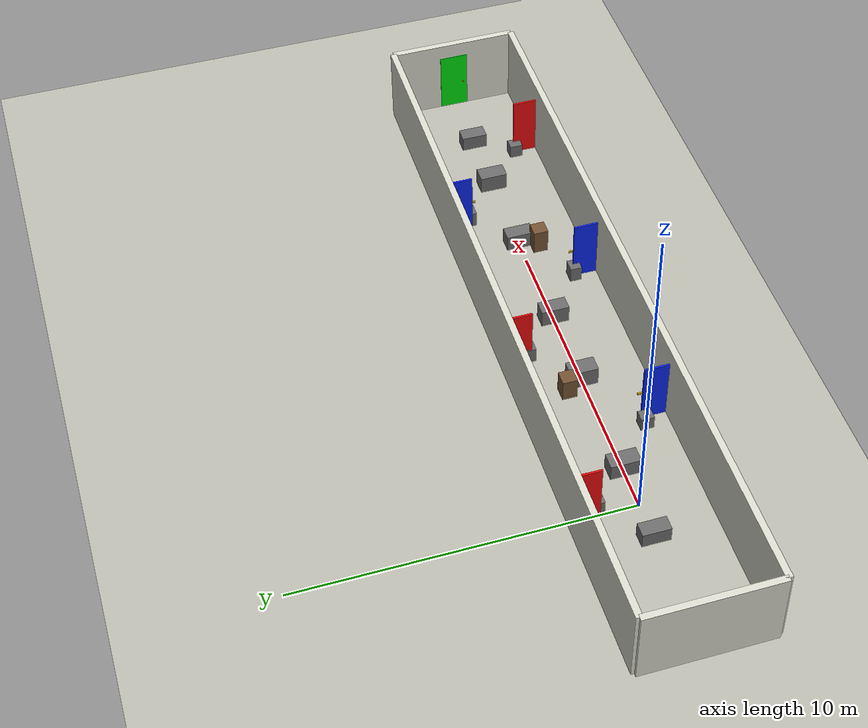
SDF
<?xml version="1.0" ?>
<sdf version="1.6">
  <world name="fire_corridor">

    <physics name="default_physics" type="ode">
      <max_step_size>0.001</max_step_size>
      <real_time_update_rate>1000</real_time_update_rate>
    </physics>

    <plugin name="gz::sim::systems::Physics" filename="gz-sim-physics-system"/>
    <plugin name="gz::sim::systems::UserCommands" filename="gz-sim-user-commands-system"/>
    <plugin name="gz::sim::systems::SceneBroadcaster" filename="gz-sim-scene-broadcaster-system"/>
    <plugin name="gz::sim::systems::Sensors" filename="gz-sim-sensors-system">
      <render_engine>ogre</render_engine>
    </plugin>

    <light type="directional" name="sun">
      <cast_shadows>true</cast_shadows>
      <pose>6 0 10 0 0 0</pose>
      <diffuse>0.9 0.9 0.9 1</diffuse>
      <specular>0.3 0.3 0.3 1</specular>
      <direction>-0.5 0.1 -1</direction>
    </light>
    <light type="point" name="light_mid">
      <pose>8 0 2.8 0 0 0</pose>
      <diffuse>0.8 0.8 0.8 1</diffuse>
      <specular>0.1 0.1 0.1 1</specular>
      <attenuation><range>16</range><linear>0.05</linear></attenuation>
    </light>

    <model name="ground_plane">
      <static>true</static>
      <link name="link">
        <collision name="col">
          <geometry><plane><normal>0 0 1</normal><size>30 10</size></plane></geometry>
        </collision>
        <visual name="vis">
          <geometry><plane><normal>0 0 1</normal><size>30 10</size></plane></geometry>
          <material><ambient>0.72 0.72 0.68 1</ambient><diffuse>0.72 0.72 0.68 1</diffuse></material>
        </visual>
      </link>
    </model>

    <model name="wall_south">
      <static>true</static>
      <pose>6.5 -2 1.25 0 0 0</pose>
      <link name="link">
        <collision name="col"><geometry><box><size>23 0.2 2.5</size></box></geometry></collision>
        <visual name="vis">
          <geometry><box><size>23 0.2 2.5</size></box></geometry>
          <material><ambient>0.85 0.85 0.80 1</ambient><diffuse>0.85 0.85 0.80 1</diffuse></material>
        </visual>
      </link>
    </model>

    <model name="wall_north">
      <static>true</static>
      <pose>6.5 2 1.25 0 0 0</pose>
      <link name="link">
        <collision name="col"><geometry><box><size>23 0.2 2.5</size></box></geometry></collision>
        <visual name="vis">
          <geometry><box><size>23 0.2 2.5</size></box></geometry>
          <material><ambient>0.85 0.85 0.80 1</ambient><diffuse>0.85 0.85 0.80 1</diffuse></material>
        </visual>
      </link>
    </model>

    <model name="wall_west">
      <static>true</static>
      <pose>-5 0 1.25 0 0 0</pose>
      <link name="link">
        <collision name="col"><geometry><box><size>0.2 4 2.5</size></box></geometry></collision>
        <visual name="vis">
          <geometry><box><size>0.2 4 2.5</size></box></geometry>
          <material><ambient>0.85 0.85 0.80 1</ambient><diffuse>0.85 0.85 0.80 1</diffuse></material>
        </visual>
      </link>
    </model>

    <model name="wall_east">
      <static>true</static>
      <pose>18 0 1.25 0 0 0</pose>
      <link name="link">
        <collision name="col"><geometry><box><size>0.2 4 2.5</size></box></geometry></collision>
        <visual name="vis">
          <geometry><box><size>0.2 4 2.5</size></box></geometry>
          <material><ambient>0.85 0.85 0.80 1</ambient><diffuse>0.85 0.85 0.80 1</diffuse></material>
        </visual>
      </link>
    </model>

    <!-- Side doors: visual only, no collision. -->
    <model name="door_red1">
      <static>true</static>
      <pose>0 1.55 1.0 0 0 0</pose>
      <link name="link">
        <visual name="panel">
          <geometry><box><size>0.06 0.8 2.0</size></box></geometry>
          <material><ambient>0.92 0.04 0.04 1</ambient><diffuse>0.92 0.04 0.04 1</diffuse></material>
        </visual>
      </link>
    </model>
    <model name="handle_red1">
      <static>true</static>
      <pose>0.04 1.25 0.95 0 1.5708 0</pose>
      <link name="link">
        <visual name="handle"><geometry><cylinder><radius>0.018</radius><length>0.13</length></cylinder></geometry><material><ambient>0.75 0.60 0.05 1</ambient></material></visual>
      </link>
    </model>

    <model name="door_blue1">
      <static>false</static>
      <pose>3 -1.55 1 0 0 0</pose>
      <link name="panel">
        <inertial>
          <mass>2.0</mass>
          <inertia>
            <ixx>0.90</ixx><ixy>0</ixy><ixz>0</ixz>
            <iyy>0.90</iyy><iyz>0</iyz><izz>0.12</izz>
          </inertia>
        </inertial>
        <collision name="panel_collision">
          <geometry><box><size>0.06 0.8 2</size></box></geometry>
          <surface>
            <friction><ode><mu>0.8</mu><mu2>0.8</mu2></ode></friction>
          </surface>
        </collision>
        <visual name="panel">
          <geometry><box><size>0.06 0.8 2</size></box></geometry>
          <material><ambient>0.04 0.14 0.92 1</ambient><diffuse>0.04 0.14 0.92 1</diffuse></material>
        </visual>
        <collision name="handle_collision">
<pose>0.074 0.36 -0.05 0 0 0</pose>
<geometry><box><size>0.07 0.32 0.055</size></box></geometry>
        </collision>
        <visual name="handle_backplate">
<pose>0.032 0.24 -0.05 0 0 0</pose>
<geometry><box><size>0.022 0.08 0.28</size></box></geometry>
<material><ambient>0.75 0.60 0.05 1</ambient><diffuse>0.75 0.60 0.05 1</diffuse></material>
        </visual>
        <visual name="handle">
<pose>0.078 0.36 -0.05 0 0 0</pose>
<geometry><box><size>0.052 0.32 0.052</size></box></geometry>
<material><ambient>0.75 0.60 0.05 1</ambient><diffuse>0.75 0.60 0.05 1</diffuse></material>
        </visual>
      </link>
      <joint name="hinge" type="revolute">
        <pose>0 -0.4 0 0 0 0</pose>
        <parent>world</parent>
        <child>panel</child>
        <axis>
          <xyz>0 0 1</xyz>
          <limit><lower>-2.10</lower><upper>2.10</upper><effort>40</effort><velocity>1.5</velocity></limit>
          <dynamics><damping>1.0</damping><friction>0.05</friction></dynamics>
        </axis>
      </joint>
      <plugin filename="ignition-gazebo-joint-position-controller-system"
              name="gz::sim::systems::JointPositionController">
        <joint_name>hinge</joint_name>
        <topic>/fire_robot/door/blue/x300/yn155/sn/cmd</topic>
        <p_gain>8.0</p_gain>
        <d_gain>0.4</d_gain>
        <cmd_max>60</cmd_max>
        <cmd_min>-60</cmd_min>
      </plugin>
    </model>

    <model name="door_red2">
      <static>true</static>
      <pose>6 1.55 1.0 0 0 0</pose>
      <link name="link">
        <visual name="panel">
          <geometry><box><size>0.06 0.8 2.0</size></box></geometry>
          <material><ambient>0.92 0.04 0.04 1</ambient><diffuse>0.92 0.04 0.04 1</diffuse></material>
        </visual>
      </link>
    </model>
    <model name="handle_red2">
      <static>true</static>
      <pose>6.04 1.25 0.95 0 1.5708 0</pose>
      <link name="link">
        <visual name="handle"><geometry><cylinder><radius>0.018</radius><length>0.13</length></cylinder></geometry><material><ambient>0.75 0.60 0.05 1</ambient></material></visual>
      </link>
    </model>

    <model name="door_blue2">
      <static>false</static>
      <pose>9 -1.55 1 0 0 0</pose>
      <link name="panel">
        <inertial>
          <mass>2.0</mass>
          <inertia>
            <ixx>0.90</ixx><ixy>0</ixy><ixz>0</ixz>
            <iyy>0.90</iyy><iyz>0</iyz><izz>0.12</izz>
          </inertia>
        </inertial>
        <collision name="panel_collision">
          <geometry><box><size>0.06 0.8 2</size></box></geometry>
          <surface>
            <friction><ode><mu>0.8</mu><mu2>0.8</mu2></ode></friction>
          </surface>
        </collision>
        <visual name="panel">
          <geometry><box><size>0.06 0.8 2</size></box></geometry>
          <material><ambient>0.04 0.14 0.92 1</ambient><diffuse>0.04 0.14 0.92 1</diffuse></material>
        </visual>
        <collision name="handle_collision">
<pose>0.074 0.36 -0.05 0 0 0</pose>
<geometry><box><size>0.07 0.32 0.055</size></box></geometry>
        </collision>
        <visual name="handle_backplate">
<pose>0.032 0.24 -0.05 0 0 0</pose>
<geometry><box><size>0.022 0.08 0.28</size></box></geometry>
<material><ambient>0.75 0.60 0.05 1</ambient><diffuse>0.75 0.60 0.05 1</diffuse></material>
        </visual>
        <visual name="handle">
<pose>0.078 0.36 -0.05 0 0 0</pose>
<geometry><box><size>0.052 0.32 0.052</size></box></geometry>
<material><ambient>0.75 0.60 0.05 1</ambient><diffuse>0.75 0.60 0.05 1</diffuse></material>
        </visual>
      </link>
      <joint name="hinge" type="revolute">
        <pose>0 -0.4 0 0 0 0</pose>
        <parent>world</parent>
        <child>panel</child>
        <axis>
          <xyz>0 0 1</xyz>
          <limit><lower>-2.10</lower><upper>2.10</upper><effort>40</effort><velocity>1.5</velocity></limit>
          <dynamics><damping>1.0</damping><friction>0.05</friction></dynamics>
        </axis>
      </joint>
      <plugin filename="ignition-gazebo-joint-position-controller-system"
              name="gz::sim::systems::JointPositionController">
        <joint_name>hinge</joint_name>
        <topic>/fire_robot/door/blue/x900/yn155/sn/cmd</topic>
        <p_gain>8.0</p_gain>
        <d_gain>0.4</d_gain>
        <cmd_max>60</cmd_max>
        <cmd_min>-60</cmd_min>
      </plugin>
    </model>

    <model name="door_blue3">
      <static>false</static>
      <pose>12 1.55 1 0 0 0</pose>
      <link name="panel">
        <inertial>
          <mass>2.0</mass>
          <inertia>
            <ixx>0.90</ixx><ixy>0</ixy><ixz>0</ixz>
            <iyy>0.90</iyy><iyz>0</iyz><izz>0.12</izz>
          </inertia>
        </inertial>
        <collision name="panel_collision">
          <geometry><box><size>0.06 0.8 2</size></box></geometry>
          <surface>
            <friction><ode><mu>0.8</mu><mu2>0.8</mu2></ode></friction>
          </surface>
        </collision>
        <visual name="panel">
          <geometry><box><size>0.06 0.8 2</size></box></geometry>
          <material><ambient>0.04 0.14 0.92 1</ambient><diffuse>0.04 0.14 0.92 1</diffuse></material>
        </visual>
        <collision name="handle_collision">
<pose>0.074 -0.36 -0.05 0 0 0</pose>
<geometry><box><size>0.07 0.32 0.055</size></box></geometry>
        </collision>
        <visual name="handle_backplate">
<pose>0.032 -0.24 -0.05 0 0 0</pose>
<geometry><box><size>0.022 0.08 0.28</size></box></geometry>
<material><ambient>0.75 0.60 0.05 1</ambient><diffuse>0.75 0.60 0.05 1</diffuse></material>
        </visual>
        <visual name="handle">
<pose>0.078 -0.36 -0.05 0 0 0</pose>
<geometry><box><size>0.052 0.32 0.052</size></box></geometry>
<material><ambient>0.75 0.60 0.05 1</ambient><diffuse>0.75 0.60 0.05 1</diffuse></material>
        </visual>
      </link>
      <joint name="hinge" type="revolute">
        <pose>0 0.4 0 0 0 0</pose>
        <parent>world</parent>
        <child>panel</child>
        <axis>
          <xyz>0 0 1</xyz>
          <limit><lower>-2.10</lower><upper>2.10</upper><effort>40</effort><velocity>1.5</velocity></limit>
          <dynamics><damping>1.0</damping><friction>0.05</friction></dynamics>
        </axis>
      </joint>
      <plugin filename="ignition-gazebo-joint-position-controller-system"
              name="gz::sim::systems::JointPositionController">
        <joint_name>hinge</joint_name>
        <topic>/fire_robot/door/blue/x1200/yp155/sp/cmd</topic>
        <p_gain>8.0</p_gain>
        <d_gain>0.4</d_gain>
        <cmd_max>60</cmd_max>
        <cmd_min>-60</cmd_min>
      </plugin>
    </model>

    <model name="door_red3">
      <static>true</static>
      <pose>15 -1.55 1.0 0 0 0</pose>
      <link name="link">
        <visual name="panel">
          <geometry><box><size>0.06 0.8 2.0</size></box></geometry>
          <material><ambient>0.92 0.04 0.04 1</ambient><diffuse>0.92 0.04 0.04 1</diffuse></material>
        </visual>
      </link>
    </model>
    <model name="handle_red3">
      <static>true</static>
      <pose>15.04 -1.25 0.95 0 1.5708 0</pose>
      <link name="link">
        <visual name="handle"><geometry><cylinder><radius>0.018</radius><length>0.13</length></cylinder></geometry><material><ambient>0.75 0.60 0.05 1</ambient></material></visual>
      </link>
    </model>

    <!-- Front emergency exit. -->
    <model name="door_exit">
      <static>true</static>
      <pose>17.92 0 1.0 0 0 0</pose>
      <link name="link">
        <visual name="panel">
          <geometry><box><size>0.06 0.9 2.0</size></box></geometry>
          <material><ambient>0.0 0.88 0.05 1</ambient><diffuse>0.0 0.88 0.05 1</diffuse></material>
        </visual>
      </link>
    </model>
    <model name="handle_exit">
      <static>true</static>
      <pose>17.88 -0.30 0.95 0 1.5708 0</pose>
      <link name="link">
        <visual name="handle"><geometry><cylinder><radius>0.018</radius><length>0.13</length></cylinder></geometry><material><ambient>0.75 0.60 0.05 1</ambient></material></visual>
      </link>
    </model>

    <model name="obstacle1">
      <static>true</static>
      <pose>4.5 0.55 0.35 0 0 0</pose>
      <link name="link">
        <collision name="col"><geometry><box><size>0.45 0.45 0.70</size></box></geometry></collision>
        <visual name="vis">
          <geometry><box><size>0.45 0.45 0.70</size></box></geometry>
          <material><ambient>0.45 0.32 0.20 1</ambient><diffuse>0.45 0.32 0.20 1</diffuse></material>
        </visual>
      </link>
    </model>

    <model name="obstacle2">
      <static>true</static>
      <pose>10.5 -0.55 0.40 0 0 0</pose>
      <link name="link">
        <collision name="col"><geometry><box><size>0.45 0.45 0.80</size></box></geometry></collision>
        <visual name="vis">
          <geometry><box><size>0.45 0.45 0.80</size></box></geometry>
          <material><ambient>0.45 0.32 0.20 1</ambient><diffuse>0.45 0.32 0.20 1</diffuse></material>
        </visual>
      </link>
    </model>

    <!-- Obstacle stress v4: neutral center-lane blockers force avoidance without color false positives. -->

    <model name="v4_center_block_00_start">
      <static>true</static>
      <pose>-1.10 0.00 0.24 0 0 0</pose>
      <link name="link">
        <collision name="col"><geometry><box><size>0.45 0.85 0.48</size></box></geometry></collision>
        <visual name="vis">
          <geometry><box><size>0.45 0.85 0.48</size></box></geometry>
          <material><ambient>0.42 0.42 0.42 1</ambient><diffuse>0.42 0.42 0.42 1</diffuse></material>
        </visual>
      </link>
    </model>

    <model name="v4_center_block_01_pre_blue1">
      <static>true</static>
      <pose>1.35 0.00 0.26 0 0 0</pose>
      <link name="link">
        <collision name="col"><geometry><box><size>0.50 0.90 0.52</size></box></geometry></collision>
        <visual name="vis">
          <geometry><box><size>0.50 0.90 0.52</size></box></geometry>
          <material><ambient>0.42 0.42 0.42 1</ambient><diffuse>0.42 0.42 0.42 1</diffuse></material>
        </visual>
      </link>
    </model>

    <model name="v4_center_block_02_between_blue1_blue2">
      <static>true</static>
      <pose>4.85 0.00 0.30 0 0 0</pose>
      <link name="link">
        <collision name="col"><geometry><box><size>0.50 0.85 0.60</size></box></geometry></collision>
        <visual name="vis">
          <geometry><box><size>0.50 0.85 0.60</size></box></geometry>
          <material><ambient>0.42 0.42 0.42 1</ambient><diffuse>0.42 0.42 0.42 1</diffuse></material>
        </visual>
      </link>
    </model>

    <model name="v4_center_block_03_pre_blue2">
      <static>true</static>
      <pose>7.45 0.00 0.28 0 0 0</pose>
      <link name="link">
        <collision name="col"><geometry><box><size>0.45 0.85 0.56</size></box></geometry></collision>
        <visual name="vis">
          <geometry><box><size>0.45 0.85 0.56</size></box></geometry>
          <material><ambient>0.42 0.42 0.42 1</ambient><diffuse>0.42 0.42 0.42 1</diffuse></material>
        </visual>
      </link>
    </model>

    <model name="v4_center_block_04_between_blue2_blue3">
      <static>true</static>
      <pose>10.85 0.00 0.26 0 0 0</pose>
      <link name="link">
        <collision name="col"><geometry><box><size>0.45 0.85 0.52</size></box></geometry></collision>
        <visual name="vis">
          <geometry><box><size>0.45 0.85 0.52</size></box></geometry>
          <material><ambient>0.42 0.42 0.42 1</ambient><diffuse>0.42 0.42 0.42 1</diffuse></material>
        </visual>
      </link>
    </model>

    <model name="v4_center_block_05_after_blue3">
      <static>true</static>
      <pose>13.65 0.00 0.28 0 0 0</pose>
      <link name="link">
        <collision name="col"><geometry><box><size>0.50 0.85 0.56</size></box></geometry></collision>
        <visual name="vis">
          <geometry><box><size>0.50 0.85 0.56</size></box></geometry>
          <material><ambient>0.42 0.42 0.42 1</ambient><diffuse>0.42 0.42 0.42 1</diffuse></material>
        </visual>
      </link>
    </model>

    <model name="v4_center_block_06_exit_approach">
      <static>true</static>
      <pose>15.75 0.00 0.24 0 0 0</pose>
      <link name="link">
        <collision name="col"><geometry><box><size>0.45 0.80 0.48</size></box></geometry></collision>
        <visual name="vis">
          <geometry><box><size>0.45 0.80 0.48</size></box></geometry>
          <material><ambient>0.42 0.42 0.42 1</ambient><diffuse>0.42 0.42 0.42 1</diffuse></material>
        </visual>
      </link>
    </model>

    <model name="v4_side_clutter_01_right">
      <static>true</static>
      <pose>0.25 1.18 0.22 0 0 0</pose>
      <link name="link">
        <collision name="col"><geometry><box><size>0.35 0.40 0.44</size></box></geometry></collision>
        <visual name="vis">
          <geometry><box><size>0.35 0.40 0.44</size></box></geometry>
          <material><ambient>0.42 0.42 0.42 1</ambient><diffuse>0.42 0.42 0.42 1</diffuse></material>
        </visual>
      </link>
    </model>

    <model name="v4_side_clutter_02_left">
      <static>true</static>
      <pose>2.70 -1.18 0.22 0 0 0</pose>
      <link name="link">
        <collision name="col"><geometry><box><size>0.35 0.40 0.44</size></box></geometry></collision>
        <visual name="vis">
          <geometry><box><size>0.35 0.40 0.44</size></box></geometry>
          <material><ambient>0.42 0.42 0.42 1</ambient><diffuse>0.42 0.42 0.42 1</diffuse></material>
        </visual>
      </link>
    </model>

    <model name="v4_side_clutter_03_right">
      <static>true</static>
      <pose>6.15 1.20 0.25 0 0 0</pose>
      <link name="link">
        <collision name="col"><geometry><box><size>0.40 0.35 0.50</size></box></geometry></collision>
        <visual name="vis">
          <geometry><box><size>0.40 0.35 0.50</size></box></geometry>
          <material><ambient>0.42 0.42 0.42 1</ambient><diffuse>0.42 0.42 0.42 1</diffuse></material>
        </visual>
      </link>
    </model>

    <model name="v4_side_clutter_04_left">
      <static>true</static>
      <pose>8.95 -1.18 0.25 0 0 0</pose>
      <link name="link">
        <collision name="col"><geometry><box><size>0.40 0.35 0.50</size></box></geometry></collision>
        <visual name="vis">
          <geometry><box><size>0.40 0.35 0.50</size></box></geometry>
          <material><ambient>0.42 0.42 0.42 1</ambient><diffuse>0.42 0.42 0.42 1</diffuse></material>
        </visual>
      </link>
    </model>

    <model name="v4_side_clutter_05_right">
      <static>true</static>
      <pose>12.20 1.18 0.25 0 0 0</pose>
      <link name="link">
        <collision name="col"><geometry><box><size>0.40 0.35 0.50</size></box></geometry></collision>
        <visual name="vis">
          <geometry><box><size>0.40 0.35 0.50</size></box></geometry>
          <material><ambient>0.42 0.42 0.42 1</ambient><diffuse>0.42 0.42 0.42 1</diffuse></material>
        </visual>
      </link>
    </model>

    <model name="v4_side_clutter_06_left">
      <static>true</static>
      <pose>14.90 -1.18 0.22 0 0 0</pose>
      <link name="link">
        <collision name="col"><geometry><box><size>0.35 0.40 0.44</size></box></geometry></collision>
        <visual name="vis">
          <geometry><box><size>0.35 0.40 0.44</size></box></geometry>
          <material><ambient>0.42 0.42 0.42 1</ambient><diffuse>0.42 0.42 0.42 1</diffuse></material>
        </visual>
      </link>
    </model>
  </world>
</sdf>
